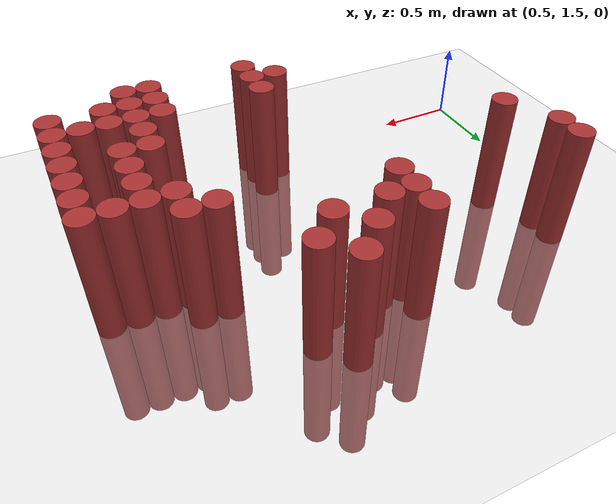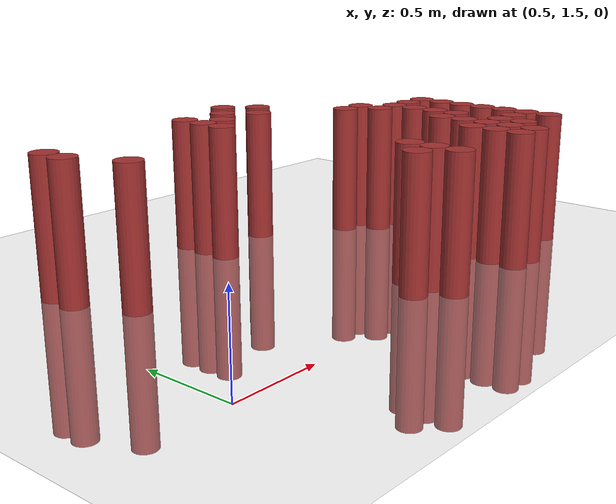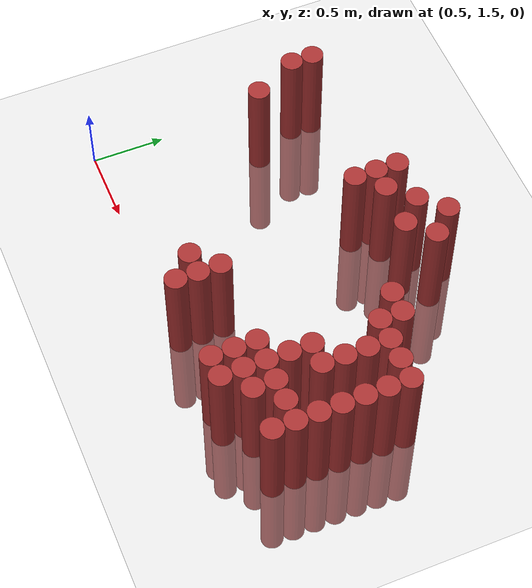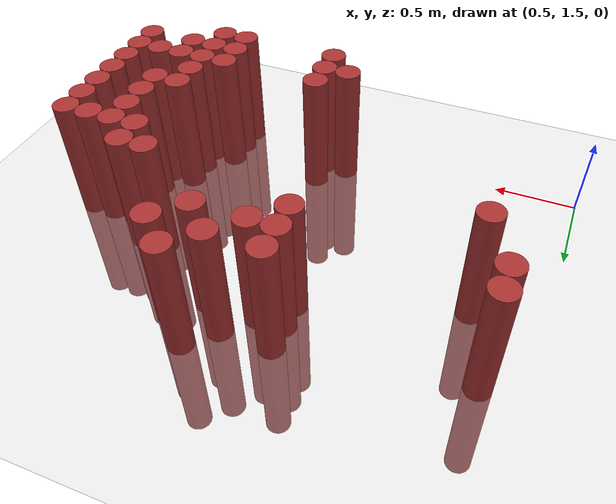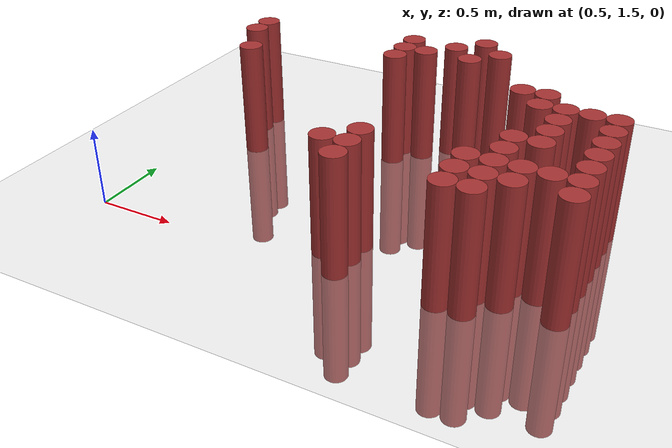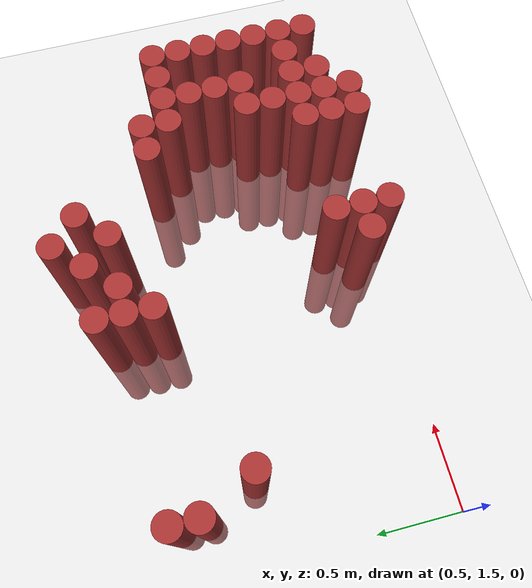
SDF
<sdf version="1.6">
 <world name="default">
  <model name="ground_plane">
   <static>1</static>
   <link name="link">
    <collision name="collision">
     <geometry><plane><normal>0 0 1</normal><size>100 100</size></plane></geometry>
     <surface><friction><ode><mu>100</mu><mu2>50</mu2></ode></friction></surface>
    </collision>
    <visual name="visual">
     <cast_shadows>0</cast_shadows>
     <geometry><plane><normal>0 0 1</normal><size>100 100</size></plane></geometry>
     <material>
      <script><uri>file://media/materials/scripts/gazebo.material</uri><name>Gazebo/Grey</name></script>
     </material>
    </visual>
   </link>
  </model>
  <model name="unit_cylinder_419">
   <static>1</static>
   <pose>0.775000 2.875000 0.000000 0.000000 0.000000 0.000000</pose>
   <link name="link">
    <inertial>
     <mass>1</mass>
     <inertia><ixx>0.145833</ixx><ixy>0</ixy><ixz>0</ixz><iyy>0.145833</iyy><iyz>0</iyz><izz>0.125</izz></inertia>
    </inertial>
    <collision name="collision">
     <geometry><cylinder><radius>0.075000</radius><length>1.5</length></cylinder></geometry>
    </collision>
    <visual name="visual">
     <geometry><cylinder><radius>0.075000</radius><length>1.5</length></cylinder></geometry>
     <material>
      <ambient>0.648000 0.192000 0.192000 1</ambient>
      <diffuse>0.648000 0.192000 0.192000 1</diffuse>
     </material>
     <material>
      <script><name>Gazebo/Grey</name><uri>file://media/materials/scripts/gazebo.material</uri></script>
     </material>
    </visual>
   </link>
  </model>
  <model name="unit_cylinder_420">
   <static>1</static>
   <pose>0.775000 3.025000 0.000000 0.000000 0.000000 0.000000</pose>
   <link name="link">
    <inertial>
     <mass>1</mass>
     <inertia><ixx>0.145833</ixx><ixy>0</ixy><ixz>0</ixz><iyy>0.145833</iyy><iyz>0</iyz><izz>0.125</izz></inertia>
    </inertial>
    <collision name="collision">
     <geometry><cylinder><radius>0.075000</radius><length>1.5</length></cylinder></geometry>
    </collision>
    <visual name="visual">
     <geometry><cylinder><radius>0.075000</radius><length>1.5</length></cylinder></geometry>
     <material>
      <ambient>0.648000 0.192000 0.192000 1</ambient>
      <diffuse>0.648000 0.192000 0.192000 1</diffuse>
     </material>
     <material>
      <script><name>Gazebo/Grey</name><uri>file://media/materials/scripts/gazebo.material</uri></script>
     </material>
    </visual>
   </link>
  </model>
  <model name="unit_cylinder_431">
   <static>1</static>
   <pose>0.925000 2.575000 0.000000 0.000000 0.000000 0.000000</pose>
   <link name="link">
    <inertial>
     <mass>1</mass>
     <inertia><ixx>0.145833</ixx><ixy>0</ixy><ixz>0</ixz><iyy>0.145833</iyy><iyz>0</iyz><izz>0.125</izz></inertia>
    </inertial>
    <collision name="collision">
     <geometry><cylinder><radius>0.075000</radius><length>1.5</length></cylinder></geometry>
    </collision>
    <visual name="visual">
     <geometry><cylinder><radius>0.075000</radius><length>1.5</length></cylinder></geometry>
     <material>
      <ambient>0.648000 0.192000 0.192000 1</ambient>
      <diffuse>0.648000 0.192000 0.192000 1</diffuse>
     </material>
     <material>
      <script><name>Gazebo/Grey</name><uri>file://media/materials/scripts/gazebo.material</uri></script>
     </material>
    </visual>
   </link>
  </model>
  <model name="unit_cylinder_436">
   <static>1</static>
   <pose>1.825000 2.875000 0.000000 0.000000 0.000000 0.000000</pose>
   <link name="link">
    <inertial>
     <mass>1</mass>
     <inertia><ixx>0.145833</ixx><ixy>0</ixy><ixz>0</ixz><iyy>0.145833</iyy><iyz>0</iyz><izz>0.125</izz></inertia>
    </inertial>
    <collision name="collision">
     <geometry><cylinder><radius>0.075000</radius><length>1.5</length></cylinder></geometry>
    </collision>
    <visual name="visual">
     <geometry><cylinder><radius>0.075000</radius><length>1.5</length></cylinder></geometry>
     <material>
      <ambient>0.648000 0.192000 0.192000 1</ambient>
      <diffuse>0.648000 0.192000 0.192000 1</diffuse>
     </material>
     <material>
      <script><name>Gazebo/Grey</name><uri>file://media/materials/scripts/gazebo.material</uri></script>
     </material>
    </visual>
   </link>
  </model>
  <model name="unit_cylinder_437">
   <static>1</static>
   <pose>1.825000 3.025000 0.000000 0.000000 0.000000 0.000000</pose>
   <link name="link">
    <inertial>
     <mass>1</mass>
     <inertia><ixx>0.145833</ixx><ixy>0</ixy><ixz>0</ixz><iyy>0.145833</iyy><iyz>0</iyz><izz>0.125</izz></inertia>
    </inertial>
    <collision name="collision">
     <geometry><cylinder><radius>0.075000</radius><length>1.5</length></cylinder></geometry>
    </collision>
    <visual name="visual">
     <geometry><cylinder><radius>0.075000</radius><length>1.5</length></cylinder></geometry>
     <material>
      <ambient>0.648000 0.192000 0.192000 1</ambient>
      <diffuse>0.648000 0.192000 0.192000 1</diffuse>
     </material>
     <material>
      <script><name>Gazebo/Grey</name><uri>file://media/materials/scripts/gazebo.material</uri></script>
     </material>
    </visual>
   </link>
  </model>
  <model name="unit_cylinder_438">
   <static>1</static>
   <pose>1.825000 3.175000 0.000000 0.000000 0.000000 0.000000</pose>
   <link name="link">
    <inertial>
     <mass>1</mass>
     <inertia><ixx>0.145833</ixx><ixy>0</ixy><ixz>0</ixz><iyy>0.145833</iyy><iyz>0</iyz><izz>0.125</izz></inertia>
    </inertial>
    <collision name="collision">
     <geometry><cylinder><radius>0.075000</radius><length>1.5</length></cylinder></geometry>
    </collision>
    <visual name="visual">
     <geometry><cylinder><radius>0.075000</radius><length>1.5</length></cylinder></geometry>
     <material>
      <ambient>0.648000 0.192000 0.192000 1</ambient>
      <diffuse>0.648000 0.192000 0.192000 1</diffuse>
     </material>
     <material>
      <script><name>Gazebo/Grey</name><uri>file://media/materials/scripts/gazebo.material</uri></script>
     </material>
    </visual>
   </link>
  </model>
  <model name="unit_cylinder_440">
   <static>1</static>
   <pose>1.975000 1.675000 0.000000 0.000000 0.000000 0.000000</pose>
   <link name="link">
    <inertial>
     <mass>1</mass>
     <inertia><ixx>0.145833</ixx><ixy>0</ixy><ixz>0</ixz><iyy>0.145833</iyy><iyz>0</iyz><izz>0.125</izz></inertia>
    </inertial>
    <collision name="collision">
     <geometry><cylinder><radius>0.075000</radius><length>1.5</length></cylinder></geometry>
    </collision>
    <visual name="visual">
     <geometry><cylinder><radius>0.075000</radius><length>1.5</length></cylinder></geometry>
     <material>
      <ambient>0.648000 0.192000 0.192000 1</ambient>
      <diffuse>0.648000 0.192000 0.192000 1</diffuse>
     </material>
     <material>
      <script><name>Gazebo/Grey</name><uri>file://media/materials/scripts/gazebo.material</uri></script>
     </material>
    </visual>
   </link>
  </model>
  <model name="unit_cylinder_441">
   <static>1</static>
   <pose>1.975000 3.025000 0.000000 0.000000 0.000000 0.000000</pose>
   <link name="link">
    <inertial>
     <mass>1</mass>
     <inertia><ixx>0.145833</ixx><ixy>0</ixy><ixz>0</ixz><iyy>0.145833</iyy><iyz>0</iyz><izz>0.125</izz></inertia>
    </inertial>
    <collision name="collision">
     <geometry><cylinder><radius>0.075000</radius><length>1.5</length></cylinder></geometry>
    </collision>
    <visual name="visual">
     <geometry><cylinder><radius>0.075000</radius><length>1.5</length></cylinder></geometry>
     <material>
      <ambient>0.648000 0.192000 0.192000 1</ambient>
      <diffuse>0.648000 0.192000 0.192000 1</diffuse>
     </material>
     <material>
      <script><name>Gazebo/Grey</name><uri>file://media/materials/scripts/gazebo.material</uri></script>
     </material>
    </visual>
   </link>
  </model>
  <model name="unit_cylinder_448">
   <static>1</static>
   <pose>2.125000 1.525000 0.000000 0.000000 0.000000 0.000000</pose>
   <link name="link">
    <inertial>
     <mass>1</mass>
     <inertia><ixx>0.145833</ixx><ixy>0</ixy><ixz>0</ixz><iyy>0.145833</iyy><iyz>0</iyz><izz>0.125</izz></inertia>
    </inertial>
    <collision name="collision">
     <geometry><cylinder><radius>0.075000</radius><length>1.5</length></cylinder></geometry>
    </collision>
    <visual name="visual">
     <geometry><cylinder><radius>0.075000</radius><length>1.5</length></cylinder></geometry>
     <material>
      <ambient>0.648000 0.192000 0.192000 1</ambient>
      <diffuse>0.648000 0.192000 0.192000 1</diffuse>
     </material>
     <material>
      <script><name>Gazebo/Grey</name><uri>file://media/materials/scripts/gazebo.material</uri></script>
     </material>
    </visual>
   </link>
  </model>
  <model name="unit_cylinder_449">
   <static>1</static>
   <pose>2.125000 1.675000 0.000000 0.000000 0.000000 0.000000</pose>
   <link name="link">
    <inertial>
     <mass>1</mass>
     <inertia><ixx>0.145833</ixx><ixy>0</ixy><ixz>0</ixz><iyy>0.145833</iyy><iyz>0</iyz><izz>0.125</izz></inertia>
    </inertial>
    <collision name="collision">
     <geometry><cylinder><radius>0.075000</radius><length>1.5</length></cylinder></geometry>
    </collision>
    <visual name="visual">
     <geometry><cylinder><radius>0.075000</radius><length>1.5</length></cylinder></geometry>
     <material>
      <ambient>0.648000 0.192000 0.192000 1</ambient>
      <diffuse>0.648000 0.192000 0.192000 1</diffuse>
     </material>
     <material>
      <script><name>Gazebo/Grey</name><uri>file://media/materials/scripts/gazebo.material</uri></script>
     </material>
    </visual>
   </link>
  </model>
  <model name="unit_cylinder_450">
   <static>1</static>
   <pose>2.125000 1.825000 0.000000 0.000000 0.000000 0.000000</pose>
   <link name="link">
    <inertial>
     <mass>1</mass>
     <inertia><ixx>0.145833</ixx><ixy>0</ixy><ixz>0</ixz><iyy>0.145833</iyy><iyz>0</iyz><izz>0.125</izz></inertia>
    </inertial>
    <collision name="collision">
     <geometry><cylinder><radius>0.075000</radius><length>1.5</length></cylinder></geometry>
    </collision>
    <visual name="visual">
     <geometry><cylinder><radius>0.075000</radius><length>1.5</length></cylinder></geometry>
     <material>
      <ambient>0.648000 0.192000 0.192000 1</ambient>
      <diffuse>0.648000 0.192000 0.192000 1</diffuse>
     </material>
     <material>
      <script><name>Gazebo/Grey</name><uri>file://media/materials/scripts/gazebo.material</uri></script>
     </material>
    </visual>
   </link>
  </model>
  <model name="unit_cylinder_451">
   <static>1</static>
   <pose>2.125000 3.175000 0.000000 0.000000 0.000000 0.000000</pose>
   <link name="link">
    <inertial>
     <mass>1</mass>
     <inertia><ixx>0.145833</ixx><ixy>0</ixy><ixz>0</ixz><iyy>0.145833</iyy><iyz>0</iyz><izz>0.125</izz></inertia>
    </inertial>
    <collision name="collision">
     <geometry><cylinder><radius>0.075000</radius><length>1.5</length></cylinder></geometry>
    </collision>
    <visual name="visual">
     <geometry><cylinder><radius>0.075000</radius><length>1.5</length></cylinder></geometry>
     <material>
      <ambient>0.648000 0.192000 0.192000 1</ambient>
      <diffuse>0.648000 0.192000 0.192000 1</diffuse>
     </material>
     <material>
      <script><name>Gazebo/Grey</name><uri>file://media/materials/scripts/gazebo.material</uri></script>
     </material>
    </visual>
   </link>
  </model>
  <model name="unit_cylinder_460">
   <static>1</static>
   <pose>2.275000 3.025000 0.000000 0.000000 0.000000 0.000000</pose>
   <link name="link">
    <inertial>
     <mass>1</mass>
     <inertia><ixx>0.145833</ixx><ixy>0</ixy><ixz>0</ixz><iyy>0.145833</iyy><iyz>0</iyz><izz>0.125</izz></inertia>
    </inertial>
    <collision name="collision">
     <geometry><cylinder><radius>0.075000</radius><length>1.5</length></cylinder></geometry>
    </collision>
    <visual name="visual">
     <geometry><cylinder><radius>0.075000</radius><length>1.5</length></cylinder></geometry>
     <material>
      <ambient>0.648000 0.192000 0.192000 1</ambient>
      <diffuse>0.648000 0.192000 0.192000 1</diffuse>
     </material>
     <material>
      <script><name>Gazebo/Grey</name><uri>file://media/materials/scripts/gazebo.material</uri></script>
     </material>
    </visual>
   </link>
  </model>
  <model name="unit_cylinder_461">
   <static>1</static>
   <pose>2.275000 3.325000 0.000000 0.000000 0.000000 0.000000</pose>
   <link name="link">
    <inertial>
     <mass>1</mass>
     <inertia><ixx>0.145833</ixx><ixy>0</ixy><ixz>0</ixz><iyy>0.145833</iyy><iyz>0</iyz><izz>0.125</izz></inertia>
    </inertial>
    <collision name="collision">
     <geometry><cylinder><radius>0.075000</radius><length>1.5</length></cylinder></geometry>
    </collision>
    <visual name="visual">
     <geometry><cylinder><radius>0.075000</radius><length>1.5</length></cylinder></geometry>
     <material>
      <ambient>0.648000 0.192000 0.192000 1</ambient>
      <diffuse>0.648000 0.192000 0.192000 1</diffuse>
     </material>
     <material>
      <script><name>Gazebo/Grey</name><uri>file://media/materials/scripts/gazebo.material</uri></script>
     </material>
    </visual>
   </link>
  </model>
  <model name="unit_cylinder_471">
   <static>1</static>
   <pose>2.425000 3.175000 0.000000 0.000000 0.000000 0.000000</pose>
   <link name="link">
    <inertial>
     <mass>1</mass>
     <inertia><ixx>0.145833</ixx><ixy>0</ixy><ixz>0</ixz><iyy>0.145833</iyy><iyz>0</iyz><izz>0.125</izz></inertia>
    </inertial>
    <collision name="collision">
     <geometry><cylinder><radius>0.075000</radius><length>1.5</length></cylinder></geometry>
    </collision>
    <visual name="visual">
     <geometry><cylinder><radius>0.075000</radius><length>1.5</length></cylinder></geometry>
     <material>
      <ambient>0.648000 0.192000 0.192000 1</ambient>
      <diffuse>0.648000 0.192000 0.192000 1</diffuse>
     </material>
     <material>
      <script><name>Gazebo/Grey</name><uri>file://media/materials/scripts/gazebo.material</uri></script>
     </material>
    </visual>
   </link>
  </model>
  <model name="unit_cylinder_491">
   <static>1</static>
   <pose>2.725000 1.525000 0.000000 0.000000 0.000000 0.000000</pose>
   <link name="link">
    <inertial>
     <mass>1</mass>
     <inertia><ixx>0.145833</ixx><ixy>0</ixy><ixz>0</ixz><iyy>0.145833</iyy><iyz>0</iyz><izz>0.125</izz></inertia>
    </inertial>
    <collision name="collision">
     <geometry><cylinder><radius>0.075000</radius><length>1.5</length></cylinder></geometry>
    </collision>
    <visual name="visual">
     <geometry><cylinder><radius>0.075000</radius><length>1.5</length></cylinder></geometry>
     <material>
      <ambient>0.648000 0.192000 0.192000 1</ambient>
      <diffuse>0.648000 0.192000 0.192000 1</diffuse>
     </material>
     <material>
      <script><name>Gazebo/Grey</name><uri>file://media/materials/scripts/gazebo.material</uri></script>
     </material>
    </visual>
   </link>
  </model>
  <model name="unit_cylinder_492">
   <static>1</static>
   <pose>2.725000 1.675000 0.000000 0.000000 0.000000 0.000000</pose>
   <link name="link">
    <inertial>
     <mass>1</mass>
     <inertia><ixx>0.145833</ixx><ixy>0</ixy><ixz>0</ixz><iyy>0.145833</iyy><iyz>0</iyz><izz>0.125</izz></inertia>
    </inertial>
    <collision name="collision">
     <geometry><cylinder><radius>0.075000</radius><length>1.5</length></cylinder></geometry>
    </collision>
    <visual name="visual">
     <geometry><cylinder><radius>0.075000</radius><length>1.5</length></cylinder></geometry>
     <material>
      <ambient>0.648000 0.192000 0.192000 1</ambient>
      <diffuse>0.648000 0.192000 0.192000 1</diffuse>
     </material>
     <material>
      <script><name>Gazebo/Grey</name><uri>file://media/materials/scripts/gazebo.material</uri></script>
     </material>
    </visual>
   </link>
  </model>
  <model name="unit_cylinder_493">
   <static>1</static>
   <pose>2.725000 1.825000 0.000000 0.000000 0.000000 0.000000</pose>
   <link name="link">
    <inertial>
     <mass>1</mass>
     <inertia><ixx>0.145833</ixx><ixy>0</ixy><ixz>0</ixz><iyy>0.145833</iyy><iyz>0</iyz><izz>0.125</izz></inertia>
    </inertial>
    <collision name="collision">
     <geometry><cylinder><radius>0.075000</radius><length>1.5</length></cylinder></geometry>
    </collision>
    <visual name="visual">
     <geometry><cylinder><radius>0.075000</radius><length>1.5</length></cylinder></geometry>
     <material>
      <ambient>0.648000 0.192000 0.192000 1</ambient>
      <diffuse>0.648000 0.192000 0.192000 1</diffuse>
     </material>
     <material>
      <script><name>Gazebo/Grey</name><uri>file://media/materials/scripts/gazebo.material</uri></script>
     </material>
    </visual>
   </link>
  </model>
  <model name="unit_cylinder_494">
   <static>1</static>
   <pose>2.725000 2.725000 0.000000 0.000000 0.000000 0.000000</pose>
   <link name="link">
    <inertial>
     <mass>1</mass>
     <inertia><ixx>0.145833</ixx><ixy>0</ixy><ixz>0</ixz><iyy>0.145833</iyy><iyz>0</iyz><izz>0.125</izz></inertia>
    </inertial>
    <collision name="collision">
     <geometry><cylinder><radius>0.075000</radius><length>1.5</length></cylinder></geometry>
    </collision>
    <visual name="visual">
     <geometry><cylinder><radius>0.075000</radius><length>1.5</length></cylinder></geometry>
     <material>
      <ambient>0.648000 0.192000 0.192000 1</ambient>
      <diffuse>0.648000 0.192000 0.192000 1</diffuse>
     </material>
     <material>
      <script><name>Gazebo/Grey</name><uri>file://media/materials/scripts/gazebo.material</uri></script>
     </material>
    </visual>
   </link>
  </model>
  <model name="unit_cylinder_504">
   <static>1</static>
   <pose>2.875000 1.525000 0.000000 0.000000 0.000000 0.000000</pose>
   <link name="link">
    <inertial>
     <mass>1</mass>
     <inertia><ixx>0.145833</ixx><ixy>0</ixy><ixz>0</ixz><iyy>0.145833</iyy><iyz>0</iyz><izz>0.125</izz></inertia>
    </inertial>
    <collision name="collision">
     <geometry><cylinder><radius>0.075000</radius><length>1.5</length></cylinder></geometry>
    </collision>
    <visual name="visual">
     <geometry><cylinder><radius>0.075000</radius><length>1.5</length></cylinder></geometry>
     <material>
      <ambient>0.648000 0.192000 0.192000 1</ambient>
      <diffuse>0.648000 0.192000 0.192000 1</diffuse>
     </material>
     <material>
      <script><name>Gazebo/Grey</name><uri>file://media/materials/scripts/gazebo.material</uri></script>
     </material>
    </visual>
   </link>
  </model>
  <model name="unit_cylinder_505">
   <static>1</static>
   <pose>2.875000 1.675000 0.000000 0.000000 0.000000 0.000000</pose>
   <link name="link">
    <inertial>
     <mass>1</mass>
     <inertia><ixx>0.145833</ixx><ixy>0</ixy><ixz>0</ixz><iyy>0.145833</iyy><iyz>0</iyz><izz>0.125</izz></inertia>
    </inertial>
    <collision name="collision">
     <geometry><cylinder><radius>0.075000</radius><length>1.5</length></cylinder></geometry>
    </collision>
    <visual name="visual">
     <geometry><cylinder><radius>0.075000</radius><length>1.5</length></cylinder></geometry>
     <material>
      <ambient>0.648000 0.192000 0.192000 1</ambient>
      <diffuse>0.648000 0.192000 0.192000 1</diffuse>
     </material>
     <material>
      <script><name>Gazebo/Grey</name><uri>file://media/materials/scripts/gazebo.material</uri></script>
     </material>
    </visual>
   </link>
  </model>
  <model name="unit_cylinder_506">
   <static>1</static>
   <pose>2.875000 1.825000 0.000000 0.000000 0.000000 0.000000</pose>
   <link name="link">
    <inertial>
     <mass>1</mass>
     <inertia><ixx>0.145833</ixx><ixy>0</ixy><ixz>0</ixz><iyy>0.145833</iyy><iyz>0</iyz><izz>0.125</izz></inertia>
    </inertial>
    <collision name="collision">
     <geometry><cylinder><radius>0.075000</radius><length>1.5</length></cylinder></geometry>
    </collision>
    <visual name="visual">
     <geometry><cylinder><radius>0.075000</radius><length>1.5</length></cylinder></geometry>
     <material>
      <ambient>0.648000 0.192000 0.192000 1</ambient>
      <diffuse>0.648000 0.192000 0.192000 1</diffuse>
     </material>
     <material>
      <script><name>Gazebo/Grey</name><uri>file://media/materials/scripts/gazebo.material</uri></script>
     </material>
    </visual>
   </link>
  </model>
  <model name="unit_cylinder_507">
   <static>1</static>
   <pose>2.875000 1.975000 0.000000 0.000000 0.000000 0.000000</pose>
   <link name="link">
    <inertial>
     <mass>1</mass>
     <inertia><ixx>0.145833</ixx><ixy>0</ixy><ixz>0</ixz><iyy>0.145833</iyy><iyz>0</iyz><izz>0.125</izz></inertia>
    </inertial>
    <collision name="collision">
     <geometry><cylinder><radius>0.075000</radius><length>1.5</length></cylinder></geometry>
    </collision>
    <visual name="visual">
     <geometry><cylinder><radius>0.075000</radius><length>1.5</length></cylinder></geometry>
     <material>
      <ambient>0.648000 0.192000 0.192000 1</ambient>
      <diffuse>0.648000 0.192000 0.192000 1</diffuse>
     </material>
     <material>
      <script><name>Gazebo/Grey</name><uri>file://media/materials/scripts/gazebo.material</uri></script>
     </material>
    </visual>
   </link>
  </model>
  <model name="unit_cylinder_508">
   <static>1</static>
   <pose>2.875000 2.125000 0.000000 0.000000 0.000000 0.000000</pose>
   <link name="link">
    <inertial>
     <mass>1</mass>
     <inertia><ixx>0.145833</ixx><ixy>0</ixy><ixz>0</ixz><iyy>0.145833</iyy><iyz>0</iyz><izz>0.125</izz></inertia>
    </inertial>
    <collision name="collision">
     <geometry><cylinder><radius>0.075000</radius><length>1.5</length></cylinder></geometry>
    </collision>
    <visual name="visual">
     <geometry><cylinder><radius>0.075000</radius><length>1.5</length></cylinder></geometry>
     <material>
      <ambient>0.648000 0.192000 0.192000 1</ambient>
      <diffuse>0.648000 0.192000 0.192000 1</diffuse>
     </material>
     <material>
      <script><name>Gazebo/Grey</name><uri>file://media/materials/scripts/gazebo.material</uri></script>
     </material>
    </visual>
   </link>
  </model>
  <model name="unit_cylinder_509">
   <static>1</static>
   <pose>2.875000 2.575000 0.000000 0.000000 0.000000 0.000000</pose>
   <link name="link">
    <inertial>
     <mass>1</mass>
     <inertia><ixx>0.145833</ixx><ixy>0</ixy><ixz>0</ixz><iyy>0.145833</iyy><iyz>0</iyz><izz>0.125</izz></inertia>
    </inertial>
    <collision name="collision">
     <geometry><cylinder><radius>0.075000</radius><length>1.5</length></cylinder></geometry>
    </collision>
    <visual name="visual">
     <geometry><cylinder><radius>0.075000</radius><length>1.5</length></cylinder></geometry>
     <material>
      <ambient>0.648000 0.192000 0.192000 1</ambient>
      <diffuse>0.648000 0.192000 0.192000 1</diffuse>
     </material>
     <material>
      <script><name>Gazebo/Grey</name><uri>file://media/materials/scripts/gazebo.material</uri></script>
     </material>
    </visual>
   </link>
  </model>
  <model name="unit_cylinder_510">
   <static>1</static>
   <pose>2.875000 2.725000 0.000000 0.000000 0.000000 0.000000</pose>
   <link name="link">
    <inertial>
     <mass>1</mass>
     <inertia><ixx>0.145833</ixx><ixy>0</ixy><ixz>0</ixz><iyy>0.145833</iyy><iyz>0</iyz><izz>0.125</izz></inertia>
    </inertial>
    <collision name="collision">
     <geometry><cylinder><radius>0.075000</radius><length>1.5</length></cylinder></geometry>
    </collision>
    <visual name="visual">
     <geometry><cylinder><radius>0.075000</radius><length>1.5</length></cylinder></geometry>
     <material>
      <ambient>0.648000 0.192000 0.192000 1</ambient>
      <diffuse>0.648000 0.192000 0.192000 1</diffuse>
     </material>
     <material>
      <script><name>Gazebo/Grey</name><uri>file://media/materials/scripts/gazebo.material</uri></script>
     </material>
    </visual>
   </link>
  </model>
  <model name="unit_cylinder_516">
   <static>1</static>
   <pose>3.025000 1.675000 0.000000 0.000000 0.000000 0.000000</pose>
   <link name="link">
    <inertial>
     <mass>1</mass>
     <inertia><ixx>0.145833</ixx><ixy>0</ixy><ixz>0</ixz><iyy>0.145833</iyy><iyz>0</iyz><izz>0.125</izz></inertia>
    </inertial>
    <collision name="collision">
     <geometry><cylinder><radius>0.075000</radius><length>1.5</length></cylinder></geometry>
    </collision>
    <visual name="visual">
     <geometry><cylinder><radius>0.075000</radius><length>1.5</length></cylinder></geometry>
     <material>
      <ambient>0.648000 0.192000 0.192000 1</ambient>
      <diffuse>0.648000 0.192000 0.192000 1</diffuse>
     </material>
     <material>
      <script><name>Gazebo/Grey</name><uri>file://media/materials/scripts/gazebo.material</uri></script>
     </material>
    </visual>
   </link>
  </model>
  <model name="unit_cylinder_517">
   <static>1</static>
   <pose>3.025000 1.825000 0.000000 0.000000 0.000000 0.000000</pose>
   <link name="link">
    <inertial>
     <mass>1</mass>
     <inertia><ixx>0.145833</ixx><ixy>0</ixy><ixz>0</ixz><iyy>0.145833</iyy><iyz>0</iyz><izz>0.125</izz></inertia>
    </inertial>
    <collision name="collision">
     <geometry><cylinder><radius>0.075000</radius><length>1.5</length></cylinder></geometry>
    </collision>
    <visual name="visual">
     <geometry><cylinder><radius>0.075000</radius><length>1.5</length></cylinder></geometry>
     <material>
      <ambient>0.648000 0.192000 0.192000 1</ambient>
      <diffuse>0.648000 0.192000 0.192000 1</diffuse>
     </material>
     <material>
      <script><name>Gazebo/Grey</name><uri>file://media/materials/scripts/gazebo.material</uri></script>
     </material>
    </visual>
   </link>
  </model>
  <model name="unit_cylinder_518">
   <static>1</static>
   <pose>3.025000 2.125000 0.000000 0.000000 0.000000 0.000000</pose>
   <link name="link">
    <inertial>
     <mass>1</mass>
     <inertia><ixx>0.145833</ixx><ixy>0</ixy><ixz>0</ixz><iyy>0.145833</iyy><iyz>0</iyz><izz>0.125</izz></inertia>
    </inertial>
    <collision name="collision">
     <geometry><cylinder><radius>0.075000</radius><length>1.5</length></cylinder></geometry>
    </collision>
    <visual name="visual">
     <geometry><cylinder><radius>0.075000</radius><length>1.5</length></cylinder></geometry>
     <material>
      <ambient>0.648000 0.192000 0.192000 1</ambient>
      <diffuse>0.648000 0.192000 0.192000 1</diffuse>
     </material>
     <material>
      <script><name>Gazebo/Grey</name><uri>file://media/materials/scripts/gazebo.material</uri></script>
     </material>
    </visual>
   </link>
  </model>
  <model name="unit_cylinder_519">
   <static>1</static>
   <pose>3.025000 2.275000 0.000000 0.000000 0.000000 0.000000</pose>
   <link name="link">
    <inertial>
     <mass>1</mass>
     <inertia><ixx>0.145833</ixx><ixy>0</ixy><ixz>0</ixz><iyy>0.145833</iyy><iyz>0</iyz><izz>0.125</izz></inertia>
    </inertial>
    <collision name="collision">
     <geometry><cylinder><radius>0.075000</radius><length>1.5</length></cylinder></geometry>
    </collision>
    <visual name="visual">
     <geometry><cylinder><radius>0.075000</radius><length>1.5</length></cylinder></geometry>
     <material>
      <ambient>0.648000 0.192000 0.192000 1</ambient>
      <diffuse>0.648000 0.192000 0.192000 1</diffuse>
     </material>
     <material>
      <script><name>Gazebo/Grey</name><uri>file://media/materials/scripts/gazebo.material</uri></script>
     </material>
    </visual>
   </link>
  </model>
  <model name="unit_cylinder_520">
   <static>1</static>
   <pose>3.025000 2.425000 0.000000 0.000000 0.000000 0.000000</pose>
   <link name="link">
    <inertial>
     <mass>1</mass>
     <inertia><ixx>0.145833</ixx><ixy>0</ixy><ixz>0</ixz><iyy>0.145833</iyy><iyz>0</iyz><izz>0.125</izz></inertia>
    </inertial>
    <collision name="collision">
     <geometry><cylinder><radius>0.075000</radius><length>1.5</length></cylinder></geometry>
    </collision>
    <visual name="visual">
     <geometry><cylinder><radius>0.075000</radius><length>1.5</length></cylinder></geometry>
     <material>
      <ambient>0.648000 0.192000 0.192000 1</ambient>
      <diffuse>0.648000 0.192000 0.192000 1</diffuse>
     </material>
     <material>
      <script><name>Gazebo/Grey</name><uri>file://media/materials/scripts/gazebo.material</uri></script>
     </material>
    </visual>
   </link>
  </model>
  <model name="unit_cylinder_521">
   <static>1</static>
   <pose>3.025000 2.575000 0.000000 0.000000 0.000000 0.000000</pose>
   <link name="link">
    <inertial>
     <mass>1</mass>
     <inertia><ixx>0.145833</ixx><ixy>0</ixy><ixz>0</ixz><iyy>0.145833</iyy><iyz>0</iyz><izz>0.125</izz></inertia>
    </inertial>
    <collision name="collision">
     <geometry><cylinder><radius>0.075000</radius><length>1.5</length></cylinder></geometry>
    </collision>
    <visual name="visual">
     <geometry><cylinder><radius>0.075000</radius><length>1.5</length></cylinder></geometry>
     <material>
      <ambient>0.648000 0.192000 0.192000 1</ambient>
      <diffuse>0.648000 0.192000 0.192000 1</diffuse>
     </material>
     <material>
      <script><name>Gazebo/Grey</name><uri>file://media/materials/scripts/gazebo.material</uri></script>
     </material>
    </visual>
   </link>
  </model>
  <model name="unit_cylinder_528">
   <static>1</static>
   <pose>3.175000 1.825000 0.000000 0.000000 0.000000 0.000000</pose>
   <link name="link">
    <inertial>
     <mass>1</mass>
     <inertia><ixx>0.145833</ixx><ixy>0</ixy><ixz>0</ixz><iyy>0.145833</iyy><iyz>0</iyz><izz>0.125</izz></inertia>
    </inertial>
    <collision name="collision">
     <geometry><cylinder><radius>0.075000</radius><length>1.5</length></cylinder></geometry>
    </collision>
    <visual name="visual">
     <geometry><cylinder><radius>0.075000</radius><length>1.5</length></cylinder></geometry>
     <material>
      <ambient>0.648000 0.192000 0.192000 1</ambient>
      <diffuse>0.648000 0.192000 0.192000 1</diffuse>
     </material>
     <material>
      <script><name>Gazebo/Grey</name><uri>file://media/materials/scripts/gazebo.material</uri></script>
     </material>
    </visual>
   </link>
  </model>
  <model name="unit_cylinder_529">
   <static>1</static>
   <pose>3.175000 2.575000 0.000000 0.000000 0.000000 0.000000</pose>
   <link name="link">
    <inertial>
     <mass>1</mass>
     <inertia><ixx>0.145833</ixx><ixy>0</ixy><ixz>0</ixz><iyy>0.145833</iyy><iyz>0</iyz><izz>0.125</izz></inertia>
    </inertial>
    <collision name="collision">
     <geometry><cylinder><radius>0.075000</radius><length>1.5</length></cylinder></geometry>
    </collision>
    <visual name="visual">
     <geometry><cylinder><radius>0.075000</radius><length>1.5</length></cylinder></geometry>
     <material>
      <ambient>0.648000 0.192000 0.192000 1</ambient>
      <diffuse>0.648000 0.192000 0.192000 1</diffuse>
     </material>
     <material>
      <script><name>Gazebo/Grey</name><uri>file://media/materials/scripts/gazebo.material</uri></script>
     </material>
    </visual>
   </link>
  </model>
  <model name="unit_cylinder_538">
   <static>1</static>
   <pose>3.325000 1.675000 0.000000 0.000000 0.000000 0.000000</pose>
   <link name="link">
    <inertial>
     <mass>1</mass>
     <inertia><ixx>0.145833</ixx><ixy>0</ixy><ixz>0</ixz><iyy>0.145833</iyy><iyz>0</iyz><izz>0.125</izz></inertia>
    </inertial>
    <collision name="collision">
     <geometry><cylinder><radius>0.075000</radius><length>1.5</length></cylinder></geometry>
    </collision>
    <visual name="visual">
     <geometry><cylinder><radius>0.075000</radius><length>1.5</length></cylinder></geometry>
     <material>
      <ambient>0.648000 0.192000 0.192000 1</ambient>
      <diffuse>0.648000 0.192000 0.192000 1</diffuse>
     </material>
     <material>
      <script><name>Gazebo/Grey</name><uri>file://media/materials/scripts/gazebo.material</uri></script>
     </material>
    </visual>
   </link>
  </model>
  <model name="unit_cylinder_539">
   <static>1</static>
   <pose>3.325000 1.825000 0.000000 0.000000 0.000000 0.000000</pose>
   <link name="link">
    <inertial>
     <mass>1</mass>
     <inertia><ixx>0.145833</ixx><ixy>0</ixy><ixz>0</ixz><iyy>0.145833</iyy><iyz>0</iyz><izz>0.125</izz></inertia>
    </inertial>
    <collision name="collision">
     <geometry><cylinder><radius>0.075000</radius><length>1.5</length></cylinder></geometry>
    </collision>
    <visual name="visual">
     <geometry><cylinder><radius>0.075000</radius><length>1.5</length></cylinder></geometry>
     <material>
      <ambient>0.648000 0.192000 0.192000 1</ambient>
      <diffuse>0.648000 0.192000 0.192000 1</diffuse>
     </material>
     <material>
      <script><name>Gazebo/Grey</name><uri>file://media/materials/scripts/gazebo.material</uri></script>
     </material>
    </visual>
   </link>
  </model>
  <model name="unit_cylinder_540">
   <static>1</static>
   <pose>3.325000 1.975000 0.000000 0.000000 0.000000 0.000000</pose>
   <link name="link">
    <inertial>
     <mass>1</mass>
     <inertia><ixx>0.145833</ixx><ixy>0</ixy><ixz>0</ixz><iyy>0.145833</iyy><iyz>0</iyz><izz>0.125</izz></inertia>
    </inertial>
    <collision name="collision">
     <geometry><cylinder><radius>0.075000</radius><length>1.5</length></cylinder></geometry>
    </collision>
    <visual name="visual">
     <geometry><cylinder><radius>0.075000</radius><length>1.5</length></cylinder></geometry>
     <material>
      <ambient>0.648000 0.192000 0.192000 1</ambient>
      <diffuse>0.648000 0.192000 0.192000 1</diffuse>
     </material>
     <material>
      <script><name>Gazebo/Grey</name><uri>file://media/materials/scripts/gazebo.material</uri></script>
     </material>
    </visual>
   </link>
  </model>
  <model name="unit_cylinder_541">
   <static>1</static>
   <pose>3.325000 2.125000 0.000000 0.000000 0.000000 0.000000</pose>
   <link name="link">
    <inertial>
     <mass>1</mass>
     <inertia><ixx>0.145833</ixx><ixy>0</ixy><ixz>0</ixz><iyy>0.145833</iyy><iyz>0</iyz><izz>0.125</izz></inertia>
    </inertial>
    <collision name="collision">
     <geometry><cylinder><radius>0.075000</radius><length>1.5</length></cylinder></geometry>
    </collision>
    <visual name="visual">
     <geometry><cylinder><radius>0.075000</radius><length>1.5</length></cylinder></geometry>
     <material>
      <ambient>0.648000 0.192000 0.192000 1</ambient>
      <diffuse>0.648000 0.192000 0.192000 1</diffuse>
     </material>
     <material>
      <script><name>Gazebo/Grey</name><uri>file://media/materials/scripts/gazebo.material</uri></script>
     </material>
    </visual>
   </link>
  </model>
  <model name="unit_cylinder_542">
   <static>1</static>
   <pose>3.325000 2.275000 0.000000 0.000000 0.000000 0.000000</pose>
   <link name="link">
    <inertial>
     <mass>1</mass>
     <inertia><ixx>0.145833</ixx><ixy>0</ixy><ixz>0</ixz><iyy>0.145833</iyy><iyz>0</iyz><izz>0.125</izz></inertia>
    </inertial>
    <collision name="collision">
     <geometry><cylinder><radius>0.075000</radius><length>1.5</length></cylinder></geometry>
    </collision>
    <visual name="visual">
     <geometry><cylinder><radius>0.075000</radius><length>1.5</length></cylinder></geometry>
     <material>
      <ambient>0.648000 0.192000 0.192000 1</ambient>
      <diffuse>0.648000 0.192000 0.192000 1</diffuse>
     </material>
     <material>
      <script><name>Gazebo/Grey</name><uri>file://media/materials/scripts/gazebo.material</uri></script>
     </material>
    </visual>
   </link>
  </model>
  <model name="unit_cylinder_543">
   <static>1</static>
   <pose>3.325000 2.425000 0.000000 0.000000 0.000000 0.000000</pose>
   <link name="link">
    <inertial>
     <mass>1</mass>
     <inertia><ixx>0.145833</ixx><ixy>0</ixy><ixz>0</ixz><iyy>0.145833</iyy><iyz>0</iyz><izz>0.125</izz></inertia>
    </inertial>
    <collision name="collision">
     <geometry><cylinder><radius>0.075000</radius><length>1.5</length></cylinder></geometry>
    </collision>
    <visual name="visual">
     <geometry><cylinder><radius>0.075000</radius><length>1.5</length></cylinder></geometry>
     <material>
      <ambient>0.648000 0.192000 0.192000 1</ambient>
      <diffuse>0.648000 0.192000 0.192000 1</diffuse>
     </material>
     <material>
      <script><name>Gazebo/Grey</name><uri>file://media/materials/scripts/gazebo.material</uri></script>
     </material>
    </visual>
   </link>
  </model>
  <model name="unit_cylinder_544">
   <static>1</static>
   <pose>3.325000 2.575000 0.000000 0.000000 0.000000 0.000000</pose>
   <link name="link">
    <inertial>
     <mass>1</mass>
     <inertia><ixx>0.145833</ixx><ixy>0</ixy><ixz>0</ixz><iyy>0.145833</iyy><iyz>0</iyz><izz>0.125</izz></inertia>
    </inertial>
    <collision name="collision">
     <geometry><cylinder><radius>0.075000</radius><length>1.5</length></cylinder></geometry>
    </collision>
    <visual name="visual">
     <geometry><cylinder><radius>0.075000</radius><length>1.5</length></cylinder></geometry>
     <material>
      <ambient>0.648000 0.192000 0.192000 1</ambient>
      <diffuse>0.648000 0.192000 0.192000 1</diffuse>
     </material>
     <material>
      <script><name>Gazebo/Grey</name><uri>file://media/materials/scripts/gazebo.material</uri></script>
     </material>
    </visual>
   </link>
  </model>
 </world>
</sdf>
